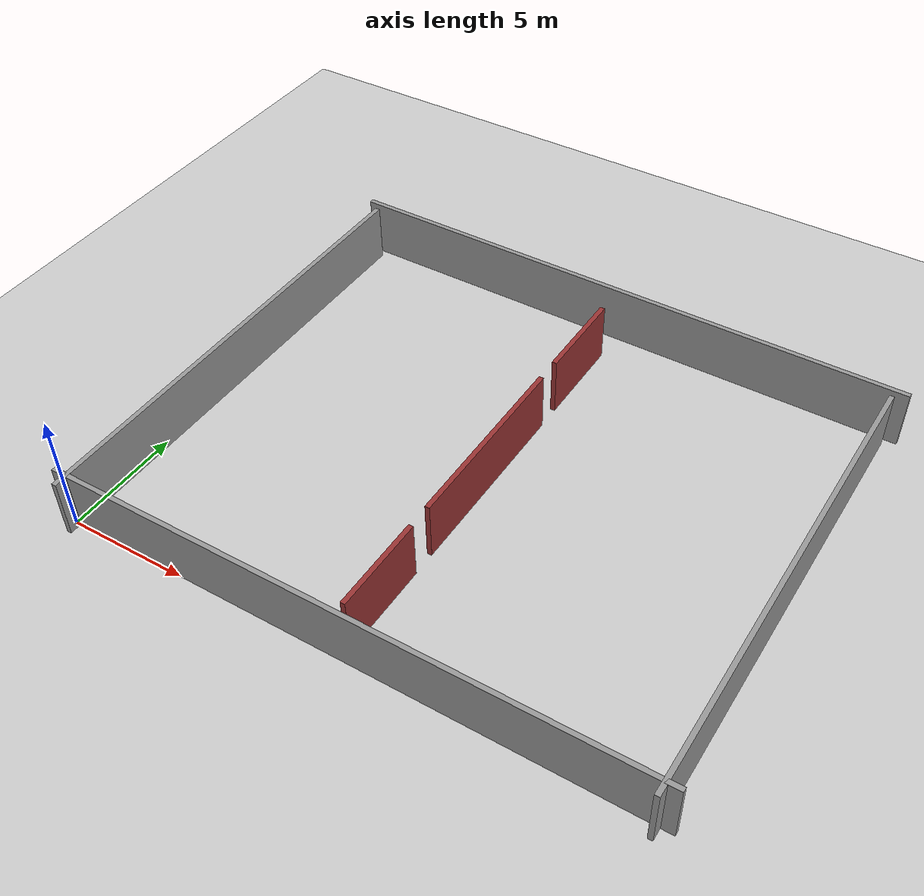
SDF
<?xml version="1.0" ?>
<sdf version="1.10">
  <world name="warehouse_s8">

    <physics name="default" type="ode">
      <real_time_update_rate>1000</real_time_update_rate>
      <max_step_size>0.001</max_step_size>
      <real_time_factor>1.0</real_time_factor>
      <ode>
        <solver><type>quick</type><iters>50</iters><sor>1.3</sor></solver>
        <constraints>
          <cfm>0</cfm><erp>0.2</erp>
          <contact_max_correcting_vel>100</contact_max_correcting_vel>
          <contact_surface_layer>0.001</contact_surface_layer>
        </constraints>
      </ode>
    </physics>

    <plugin filename="gz-sim-physics-system" name="gz::sim::systems::Physics"/>
    <plugin filename="gz-sim-user-commands-system" name="gz::sim::systems::UserCommands"/>
    <plugin filename="gz-sim-scene-broadcaster-system" name="gz::sim::systems::SceneBroadcaster"/>
    <plugin filename="gz-sim-sensors-system" name="gz::sim::systems::Sensors">
      <render_engine>ogre2</render_engine>
    </plugin>
    <plugin filename="gz-sim-imu-system" name="gz::sim::systems::Imu"/>
    <plugin filename="gz-sim-contact-system" name="gz::sim::systems::Contact"/>

    <gravity>0 0 -9.81</gravity>
    <atmosphere type="adiabatic"/>

    <scene>
      <ambient>0.4 0.4 0.4 1</ambient>
      <background>0.7 0.7 0.7 1</background>
      <shadows>true</shadows>
    </scene>

    <light name="sun" type="directional">
      <cast_shadows>true</cast_shadows>
      <pose>0 0 10 0 0 0</pose>
      <diffuse>0.8 0.8 0.8 1</diffuse>
      <specular>0.2 0.2 0.2 1</specular>
      <attenuation><range>1000</range><constant>0.9</constant><linear>0.01</linear><quadratic>0.001</quadratic></attenuation>
      <direction>-0.5 0.1 -0.9</direction>
    </light>

    <!-- Ground plane -->
    <model name="ground_plane">
      <static>true</static>
      <link name="link">
        <collision name="collision">
          <geometry><plane><normal>0 0 1</normal><size>25 20</size></plane></geometry>
        </collision>
        <visual name="visual">
          <geometry><plane><normal>0 0 1</normal><size>25 20</size></plane></geometry>
          <material><ambient>0.8 0.8 0.8 1</ambient><diffuse>0.8 0.8 0.8 1</diffuse></material>
        </visual>
        <pose>12.0 9.5 0 0 0 0</pose>
      </link>
    </model>

    <!-- Perimeter walls (same as S4) -->
    <model name="wall_west">
      <static>true</static><pose>0.1 9.5 1.25 0 0 0</pose>
      <link name="link">
        <collision name="c"><geometry><box><size>0.2 20.0 2.5</size></box></geometry></collision>
        <visual name="v"><geometry><box><size>0.2 20.0 2.5</size></box></geometry><material><ambient>0.6 0.6 0.6 1</ambient><diffuse>0.6 0.6 0.6 1</diffuse></material></visual>
      </link>
    </model>
    <model name="wall_east">
      <static>true</static><pose>23.9 9.5 1.25 0 0 0</pose>
      <link name="link">
        <collision name="c"><geometry><box><size>0.2 20.0 2.5</size></box></geometry></collision>
        <visual name="v"><geometry><box><size>0.2 20.0 2.5</size></box></geometry><material><ambient>0.6 0.6 0.6 1</ambient><diffuse>0.6 0.6 0.6 1</diffuse></material></visual>
      </link>
    </model>
    <model name="wall_south">
      <static>true</static><pose>12.0 19.9 1.25 0 0 0</pose>
      <link name="link">
        <collision name="c"><geometry><box><size>25.0 0.2 2.5</size></box></geometry></collision>
        <visual name="v"><geometry><box><size>25.0 0.2 2.5</size></box></geometry><material><ambient>0.6 0.6 0.6 1</ambient><diffuse>0.6 0.6 0.6 1</diffuse></material></visual>
      </link>
    </model>
    <model name="wall_north">
      <static>true</static><pose>12.0 0.1 1.25 0 0 0</pose>
      <link name="link">
        <collision name="c"><geometry><box><size>25.0 0.2 2.5</size></box></geometry></collision>
        <visual name="v"><geometry><box><size>25.0 0.2 2.5</size></box></geometry><material><ambient>0.6 0.6 0.6 1</ambient><diffuse>0.6 0.6 0.6 1</diffuse></material></visual>
      </link>
    </model>

    <!--
      Central dividing wall (same as S4):
      At grid x=12 (world x=12.0) with choke passages at grid y=5 (world y=14.0)
      and grid y=14 (world y=5.0).
    -->

    <!-- Segment 1: grid rows 1-4 → world y = 15..18 → center y=16.5 -->
    <model name="divider_north">
      <static>true</static>
      <pose>12.0 16.5 1.25 0 0 0</pose>
      <link name="link">
        <collision name="c"><geometry><box><size>0.2 4.0 2.5</size></box></geometry></collision>
        <visual name="v"><geometry><box><size>0.2 4.0 2.5</size></box></geometry>
          <material><ambient>0.6 0.2 0.2 1</ambient><diffuse>0.6 0.2 0.2 1</diffuse></material>
        </visual>
      </link>
    </model>

    <!-- Choke at grid y=5 → world y=14.0: GAP (no wall) -->

    <!-- Segment 2: grid rows 6-13 → world y = 6..13 → center y=9.5 -->
    <model name="divider_middle">
      <static>true</static>
      <pose>12.0 9.5 1.25 0 0 0</pose>
      <link name="link">
        <collision name="c"><geometry><box><size>0.2 8.0 2.5</size></box></geometry></collision>
        <visual name="v"><geometry><box><size>0.2 8.0 2.5</size></box></geometry>
          <material><ambient>0.6 0.2 0.2 1</ambient><diffuse>0.6 0.2 0.2 1</diffuse></material>
        </visual>
      </link>
    </model>

    <!-- Choke at grid y=14 → world y=5.0: GAP (no wall) -->

    <!-- Segment 3: grid rows 15-18 → world y = 1..4 → center y=2.5 -->
    <model name="divider_south">
      <static>true</static>
      <pose>12.0 2.5 1.25 0 0 0</pose>
      <link name="link">
        <collision name="c"><geometry><box><size>0.2 4.0 2.5</size></box></geometry></collision>
        <visual name="v"><geometry><box><size>0.2 4.0 2.5</size></box></geometry>
          <material><ambient>0.6 0.2 0.2 1</ambient><diffuse>0.6 0.2 0.2 1</diffuse></material>
        </visual>
      </link>
    </model>

  </world>
</sdf>
